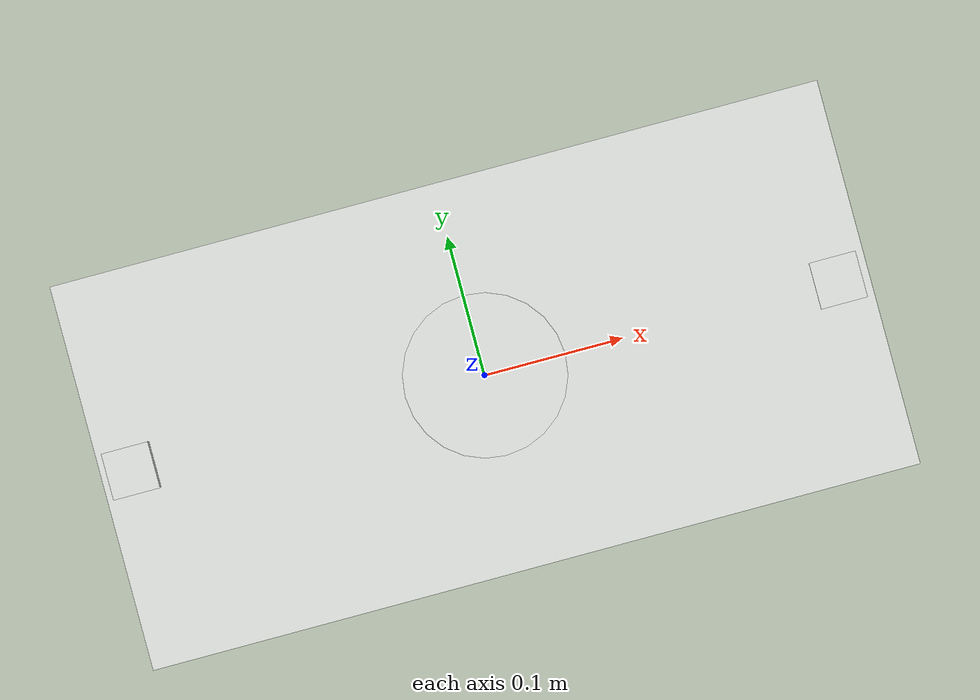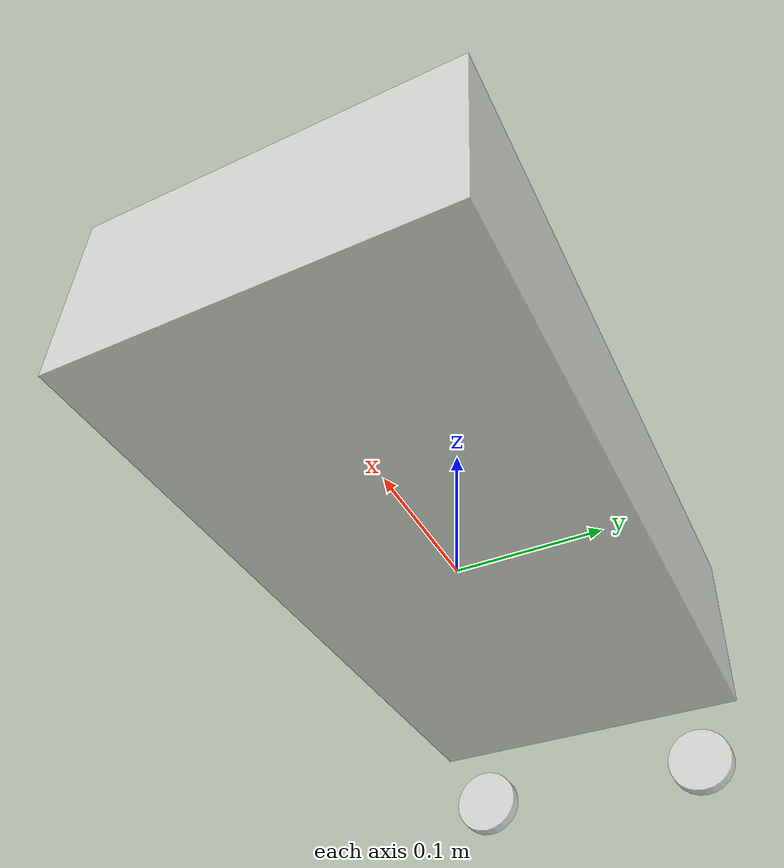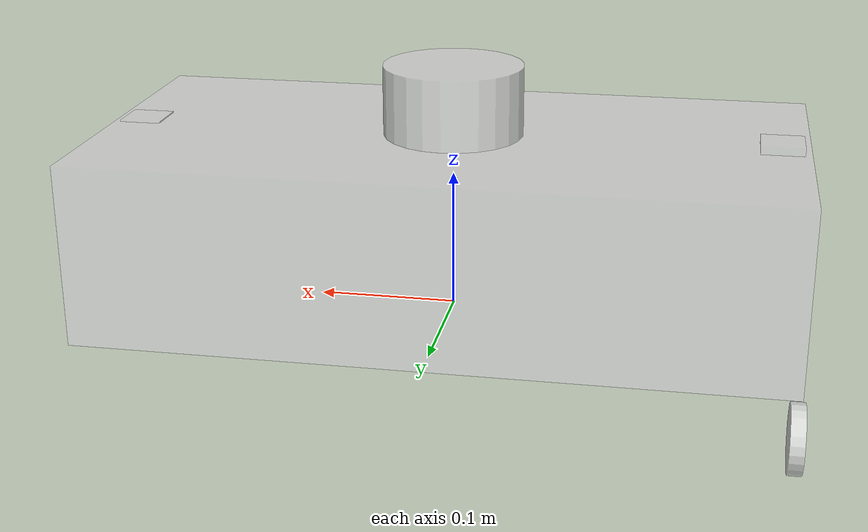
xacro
<?xml version="1.0" ?>

<robot name="karaburan" xmlns:xacro="http://www.ros.org/wiki/xacro">
  <material name="black">
     <color rgba="0.9 0.9 0.9 0.8" />
  </material>

  <!-- Box inertia (COM op link-origin) -->
  <xacro:macro name="inertial_box" params="m x y z">
    <inertial>
      <origin xyz="0 0 ${z*0.4}" rpy="0 0 0"/>
      <mass value="${m}"/>
      <inertia
        ixx="${m*(y*y+z*z)/12.0}" ixy="0" ixz="0"
        iyy="${m*(x*x+z*z)/12.0}" iyz="0"
        izz="${m*(x*x+y*y)/12.0}"/>
    </inertial>
  </xacro:macro>

  <xacro:macro name="inertial_cylinder_z" params="m r l">
    <inertial>
      <origin xyz="0 0 0" rpy="0 0 0"/>
      <mass value="${m}"/>
      <inertia
        ixx="${m*(3*r*r + l*l)/12.0}" ixy="0" ixz="0"
        iyy="${m*(3*r*r + l*l)/12.0}" iyz="0"
        izz="${0.5*m*r*r}"/>
    </inertial>
  </xacro:macro>

  <link name="base_link">
    <visual>
      <geometry>
        <box size="0.5 0.25 0.13" />
      </geometry>
      <origin xyz="0 0 0.065" rpy="0 0 0" />
      <material name="black" />
    </visual>
    <collision>
      <geometry>
        <box size="0.5 0.25 0.13" />
      </geometry>
      <origin xyz="0 0 0.065" rpy="0 0 0" />
    </collision>
    <xacro:inertial_box m="2.0" x="0.5" y="0.25" z="0.13" />
  </link>

  <link name="imu_link">
    <visual>
      <geometry>
        <box size="0.03 0.03 0.001"/>
      </geometry>
      <origin xyz="0 0 0" rpy="0 0 0" />
      <material name="black" />
    </visual>
  </link>

  <link name="gps_link">
    <visual>
      <geometry>
        <box size="0.03 0.03 0.01"/>
      </geometry>
      <origin xyz="0 0 0" rpy="0 0 0" />
      <material name="black" />
    </visual>
  </link>

  <link name="lidar_link">
    <visual>
      <geometry>
        <cylinder radius="0.05" length="0.05" />
      </geometry>
      <origin xyz="0 0 0" rpy="0 0 0" />
      <material name="black" />
    </visual>
    <collision>
      <geometry>
        <box size="0.1 0.1 0.05" />
      </geometry>
      <origin xyz="0 0 0" rpy="0 0 0" />
      <material name="black" />
    </collision>
  </link>

  <joint name="base_imu_joint" type="fixed">
    <parent link="base_link" />
    <child link="imu_link" />
    <origin xyz="0.23 0 0.131" rpy="0 0 0" />
  </joint>

  <joint name="base_gps_joint" type="fixed">
    <parent link="base_link" />
    <child link="gps_link" />
    <origin xyz="-0.23 0 0.131" rpy="0 0 0" />
  </joint>

  <xacro:macro name="prop_link" params="prefix">
    <link name="${prefix}_prop">
      <visual>
        <geometry>
          <cylinder radius="0.025" length="0.01" />
        </geometry>
        <origin xyz="0 0 0" rpy="0 1.57 0" />
        <material name="black" />
      </visual>
      <xacro:inertial_cylinder_z m="0.05" r="0.025" l="0.01"/>
    </link>
  </xacro:macro>

  <xacro:prop_link prefix="left" />
  <xacro:prop_link prefix="right" />

  <joint name="base_lidar_joint" type="fixed">
    <parent link="base_link" />
    <child link="lidar_link" />
    <origin xyz="0 0 0.155" rpy="0 0 0" />
  </joint>

  <joint name="base_left_prop_joint" type="continuous">
    <parent link="base_link" />
    <child link="left_prop" />
    <origin xyz="-0.25 0.09 -0.045" rpy="0 0 0" />
    <axis xyz="1 0 0" />
  </joint>

  <joint name="base_right_prop_joint" type="continuous">
    <parent link="base_link" />
    <child link="right_prop" />
    <origin xyz="-0.25 -0.09 -0.045" rpy="0 0 0" />
    <axis xyz="1 0 0" />
  </joint>
</robot>
